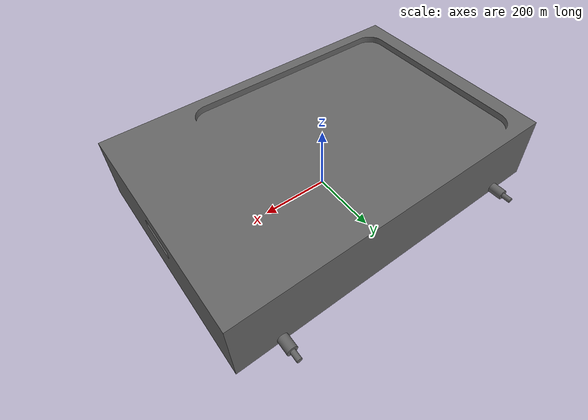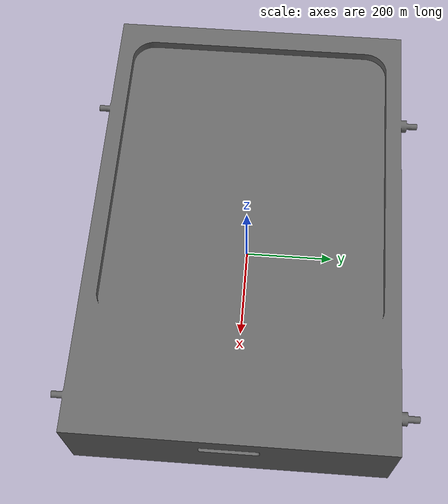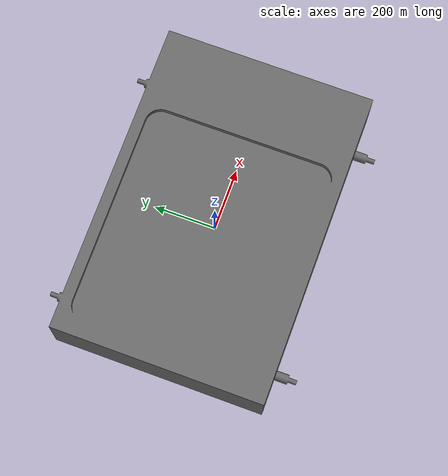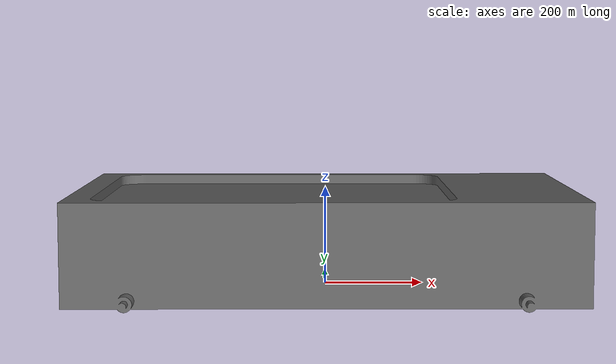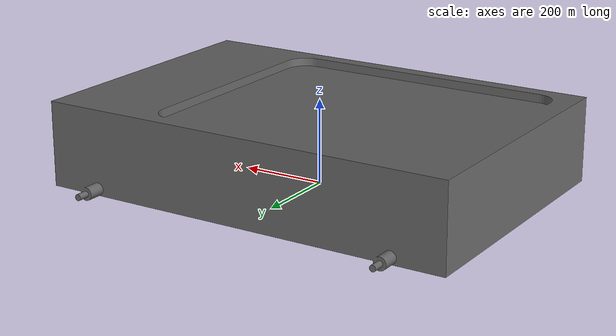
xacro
<?xml version="1.0" ?>
<robot name="turtlebot3_myRobot" xmlns:xacro="http://ros.org/wiki/xacro">
  <xacro:include filename="$(find turtlebot3_description)/urdf/common_properties.xacro"/>
  <xacro:include filename="$(find turtlebot3_description)/urdf/turtlebot3_myRobot.gazebo.xacro"/>

  <link name="base_footprint"/>

  <joint
    name="base_joint"
    type="fixed">
    <origin
      xyz="0 0 0"
      rpy="0 0 0" />
    <parent
      link="base_footprint" />
    <child
      link="base_link" />
    <axis
      xyz="0 0 0" />
  </joint>

  <link name="base_link">
    <visual>
      <origin xyz="0 0 0" rpy="0 0 0" />
      <geometry>
        <mesh filename="package://mobile_robot/meshes/base_link.STL" />
      </geometry>
      <material name="">
        <color rgba="0.4 0.4 0.4 1" />
      </material>
    </visual>
    <inertial>
      <origin xyz="0.00606302552867435 -8.17008148045542E-05 -0.0364234840571013" rpy="0 0 0" />
      <mass value="1.55024119711178" />
      <inertia
        ixx="0.000839765192137414"
        ixy="-8.00265786536251E-07"
        ixz="0.000158189979521902"
        iyy="0.00125470414853851"
        iyz="-3.08023962335364E-06"
        izz="0.0013450839021163" />
    </inertial>
    <collision>
      <origin xyz="0 0 0" rpy="0 0 0" />
      <geometry>
        <mesh filename="package://mobile_robot/meshes/base_link.STL" />
      </geometry>
    </collision>
  </link>

  <link name="left_Link">
    <visual>
      <origin xyz="0 0 0" rpy="0 0 0" />
      <geometry>
        <mesh filename="package://mobile_robot/meshes/left_wheel.STL" />
      </geometry>
      <material name="">
        <color rgba="0.792156862745098 0.819607843137255 0.933333333333333 1" />
      </material>
    </visual>
    <inertial>
      <origin xyz="4.28767243931816E-10 -0.00153990775115266 -6.86695589280362E-10" rpy="0 0 0" />
      <mass value="0.0351748276981322" />
      <inertia
        ixx="1.52376034131887E-05"
        ixy="4.87494022893268E-14"
        ixz="1.55341040665938E-10"
        iyy="2.57858861550243E-05"
        iyz="-6.38497913514686E-14"
        izz="1.52366591121853E-05" />
    </inertial>
    <collision>
      <origin xyz="0 0 0" rpy="0 0 0" />
      <geometry>
        <mesh filename="package://mobile_robot/meshes/left_wheel.STL" />
      </geometry>
    </collision>
  </link>
  <joint name="left_wheel_joint" type="continuous">
    <origin xyz="-0.012445 0.067425 -0.1619" rpy="0 0 0" />
    <parent link="base_link" />
    <child link="left_Link" />
    <axis xyz="0 -1 0" />
    <limit effort="1" velocity="1" />
  </joint>
  <link name="right_Link">
    <visual>
      <origin xyz="0 0 0" rpy="0 0 0" />
      <geometry>
        <mesh filename="package://mobile_robot/meshes/right_wheel.STL" />
      </geometry>
      <material name="">
        <color rgba="0.792156862745098 0.819607843137255 0.933333333333333 1" />
      </material>
    </visual>
    <inertial>
      <origin xyz="-1.6662754509511E-11 0.00153990775115254 8.09391442757601E-10" rpy="0 0 0" />
      <mass value="0.0351748276981308" />
      <inertia
        ixx="1.52374631575614E-05"
        ixy="-5.88633093336098E-15"
        ixz="3.70003685728657E-10"
        iyy="2.57858861550235E-05"
        iyz="-8.01164843291368E-14"
        izz="1.52367993678117E-05" />
    </inertial>
    <collision>
      <origin xyz="0 0 0" rpy="0 0 0" />
      <geometry>
        <mesh filename="package://mobile_robot/meshes/right_wheel.STL" />
      </geometry>
    </collision>
  </link>
  <joint name="right_wheel_joint" type="continuous">
    <parent link="base_link" />
    <child link="right_Link" />
    <origin xyz="-0.012445 -0.067475 -0.1619" rpy="0 0 0" />
    <axis xyz="0 -1 0" />
    <limit effort="1" velocity="1" />
  </joint>

  <joint name="imu_joint" type="fixed">
    <parent link="base_link"/>
    <child link="imu_link"/>
    <origin xyz="0 0 0" rpy="0 0 0"/>
  </joint>

  <link name="imu_link"/>

  <joint name="scan_joint" type="fixed">
    <parent link="base_link"/>
    <child link="base_scan"/>
    <origin xyz="0 0 0" rpy="0 0 0"/>
  </joint>

  <link name="base_scan"/>

</robot>
